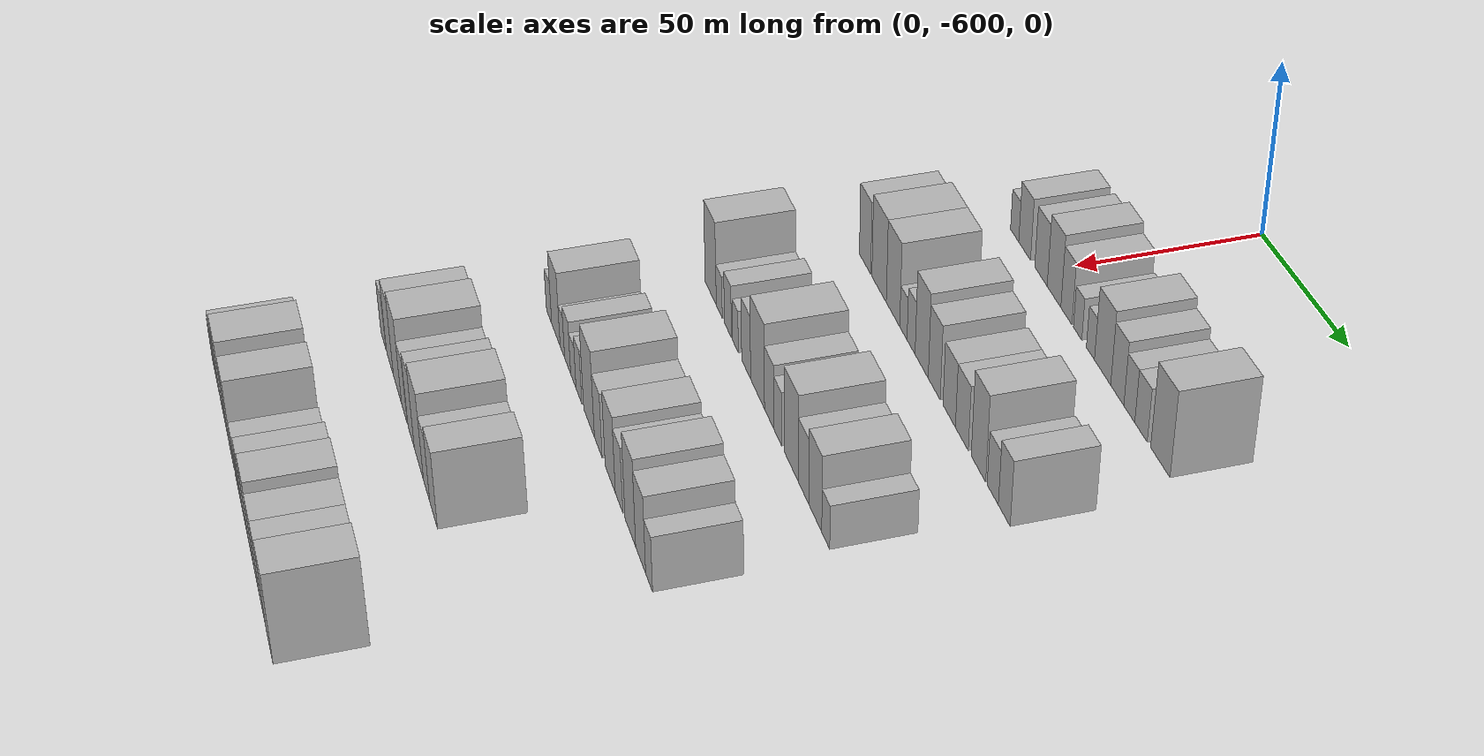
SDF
<sdf version="1.6">
 <world name="default">
  <model name="building_1">
   <static>1</static>
   <pose>50.0000 -617.0048 0 0.000000 0.000000 0.000000</pose>
   <link name="link">
    <pose>0 0 6.00 0 0 0</pose>
    <collision name="collision"><geometry><box><size>20.0000 5.9904 12.0000</size></box></geometry></collision>
    <visual name="visual">
     <cast_shadows>0</cast_shadows>
     <geometry><box><size>20.0000 5.9904 12.0000</size></box></geometry>
     <material>
      <script>
       <uri>model://HANNAS_wall/materials/scripts</uri>
       <uri>model://HANNAS_wall/materials/textures</uri>
       <name>vrc/HANNAS_wall</name>
      </script>
     </material>
    </visual>
   </link>
  </model>
  <model name="building_2">
   <static>1</static>
   <pose>50.0000 -609.7454 0 0.000000 0.000000 0.000000</pose>
   <link name="link">
    <pose>0 0 9.00 0 0 0</pose>
    <collision name="collision"><geometry><box><size>20.0000 8.5283 18.0000</size></box></geometry></collision>
    <visual name="visual">
     <cast_shadows>0</cast_shadows>
     <geometry><box><size>20.0000 8.5283 18.0000</size></box></geometry>
     <material>
      <script>
       <uri>model://HANNAS_wall/materials/scripts</uri>
       <uri>model://HANNAS_wall/materials/textures</uri>
       <name>vrc/HANNAS_wall</name>
      </script>
     </material>
    </visual>
   </link>
  </model>
  <model name="building_3">
   <static>1</static>
   <pose>50.0000 -598.1170 0 0.000000 0.000000 0.000000</pose>
   <link name="link">
    <pose>0 0 9.00 0 0 0</pose>
    <collision name="collision"><geometry><box><size>20.0000 8.7286 18.0000</size></box></geometry></collision>
    <visual name="visual">
     <cast_shadows>0</cast_shadows>
     <geometry><box><size>20.0000 8.7286 18.0000</size></box></geometry>
     <material>
      <script>
       <uri>model://HANNAS_wall/materials/scripts</uri>
       <uri>model://HANNAS_wall/materials/textures</uri>
       <name>vrc/HANNAS_wall</name>
      </script>
     </material>
    </visual>
   </link>
  </model>
  <model name="building_4">
   <static>1</static>
   <pose>50.0000 -589.0445 0 0.000000 0.000000 0.000000</pose>
   <link name="link">
    <pose>0 0 10.50 0 0 0</pose>
    <collision name="collision"><geometry><box><size>20.0000 9.4165 21.0000</size></box></geometry></collision>
    <visual name="visual">
     <cast_shadows>0</cast_shadows>
     <geometry><box><size>20.0000 9.4165 21.0000</size></box></geometry>
     <material>
      <script>
       <uri>model://HANNAS_wall/materials/scripts</uri>
       <uri>model://HANNAS_wall/materials/textures</uri>
       <name>vrc/HANNAS_wall</name>
      </script>
     </material>
    </visual>
   </link>
  </model>
  <model name="building_5">
   <static>1</static>
   <pose>50.0000 -580.6027 0 0.000000 0.000000 0.000000</pose>
   <link name="link">
    <pose>0 0 9.00 0 0 0</pose>
    <collision name="collision"><geometry><box><size>20.0000 7.4671 18.0000</size></box></geometry></collision>
    <visual name="visual">
     <cast_shadows>0</cast_shadows>
     <geometry><box><size>20.0000 7.4671 18.0000</size></box></geometry>
     <material>
      <script>
       <uri>model://HANNAS_wall/materials/scripts</uri>
       <uri>model://HANNAS_wall/materials/textures</uri>
       <name>vrc/HANNAS_wall</name>
      </script>
     </material>
    </visual>
   </link>
  </model>
  <model name="building_6">
   <static>1</static>
   <pose>50.0000 -573.0892 0 0.000000 0.000000 0.000000</pose>
   <link name="link">
    <pose>0 0 6.00 0 0 0</pose>
    <collision name="collision"><geometry><box><size>20.0000 5.5600 12.0000</size></box></geometry></collision>
    <visual name="visual">
     <cast_shadows>0</cast_shadows>
     <geometry><box><size>20.0000 5.5600 12.0000</size></box></geometry>
     <material>
      <script>
       <uri>model://HANNAS_wall/materials/scripts</uri>
       <uri>model://HANNAS_wall/materials/textures</uri>
       <name>vrc/HANNAS_wall</name>
      </script>
     </material>
    </visual>
   </link>
  </model>
  <model name="building_7">
   <static>1</static>
   <pose>50.0000 -564.6854 0 0.000000 0.000000 0.000000</pose>
   <link name="link">
    <pose>0 0 6.00 0 0 0</pose>
    <collision name="collision"><geometry><box><size>20.0000 5.2476 12.0000</size></box></geometry></collision>
    <visual name="visual">
     <cast_shadows>0</cast_shadows>
     <geometry><box><size>20.0000 5.2476 12.0000</size></box></geometry>
     <material>
      <script>
       <uri>model://HANNAS_wall/materials/scripts</uri>
       <uri>model://HANNAS_wall/materials/textures</uri>
       <name>vrc/HANNAS_wall</name>
      </script>
     </material>
    </visual>
   </link>
  </model>
  <model name="building_8">
   <static>1</static>
   <pose>50.0000 -556.8912 0 0.000000 0.000000 0.000000</pose>
   <link name="link">
    <pose>0 0 10.50 0 0 0</pose>
    <collision name="collision"><geometry><box><size>20.0000 10.3409 21.0000</size></box></geometry></collision>
    <visual name="visual">
     <cast_shadows>0</cast_shadows>
     <geometry><box><size>20.0000 10.3409 21.0000</size></box></geometry>
     <material>
      <script>
       <uri>model://HANNAS_wall/materials/scripts</uri>
       <uri>model://HANNAS_wall/materials/textures</uri>
       <name>vrc/HANNAS_wall</name>
      </script>
     </material>
    </visual>
   </link>
  </model>
  <model name="building_9">
   <static>1</static>
   <pose>50.0000 -547.6293 0 0.000000 0.000000 0.000000</pose>
   <link name="link">
    <pose>0 0 9.00 0 0 0</pose>
    <collision name="collision"><geometry><box><size>20.0000 8.1828 18.0000</size></box></geometry></collision>
    <visual name="visual">
     <cast_shadows>0</cast_shadows>
     <geometry><box><size>20.0000 8.1828 18.0000</size></box></geometry>
     <material>
      <script>
       <uri>model://HANNAS_wall/materials/scripts</uri>
       <uri>model://HANNAS_wall/materials/textures</uri>
       <name>vrc/HANNAS_wall</name>
      </script>
     </material>
    </visual>
   </link>
  </model>
  <model name="building_10">
   <static>1</static>
   <pose>50.0000 -540.1912 0 0.000000 0.000000 0.000000</pose>
   <link name="link">
    <pose>0 0 7.50 0 0 0</pose>
    <collision name="collision"><geometry><box><size>20.0000 6.6935 15.0000</size></box></geometry></collision>
    <visual name="visual">
     <cast_shadows>0</cast_shadows>
     <geometry><box><size>20.0000 6.6935 15.0000</size></box></geometry>
     <material>
      <script>
       <uri>model://HANNAS_wall/materials/scripts</uri>
       <uri>model://HANNAS_wall/materials/textures</uri>
       <name>vrc/HANNAS_wall</name>
      </script>
     </material>
    </visual>
   </link>
  </model>
  <model name="building_11">
   <static>1</static>
   <pose>50.0000 -533.0951 0 0.000000 0.000000 0.000000</pose>
   <link name="link">
    <pose>0 0 7.50 0 0 0</pose>
    <collision name="collision"><geometry><box><size>20.0000 7.4987 15.0000</size></box></geometry></collision>
    <visual name="visual">
     <cast_shadows>0</cast_shadows>
     <geometry><box><size>20.0000 7.4987 15.0000</size></box></geometry>
     <material>
      <script>
       <uri>model://HANNAS_wall/materials/scripts</uri>
       <uri>model://HANNAS_wall/materials/textures</uri>
       <name>vrc/HANNAS_wall</name>
      </script>
     </material>
    </visual>
   </link>
  </model>
  <model name="building_12">
   <static>1</static>
   <pose>50.0000 -521.6678 0 0.000000 0.000000 0.000000</pose>
   <link name="link">
    <pose>0 0 12.00 0 0 0</pose>
    <collision name="collision"><geometry><box><size>20.0000 11.3558 24.0000</size></box></geometry></collision>
    <visual name="visual">
     <cast_shadows>0</cast_shadows>
     <geometry><box><size>20.0000 11.3558 24.0000</size></box></geometry>
     <material>
      <script>
       <uri>model://HANNAS_wall/materials/scripts</uri>
       <uri>model://HANNAS_wall/materials/textures</uri>
       <name>vrc/HANNAS_wall</name>
      </script>
     </material>
    </visual>
   </link>
  </model>
  <model name="building_138">
   <static>1</static>
   <pose>90.0000 -615.3735 0 0.000000 0.000000 0.000000</pose>
   <link name="link">
    <pose>0 0 10.50 0 0 0</pose>
    <collision name="collision"><geometry><box><size>20.0000 9.2531 21.0000</size></box></geometry></collision>
    <visual name="visual">
     <cast_shadows>0</cast_shadows>
     <geometry><box><size>20.0000 9.2531 21.0000</size></box></geometry>
     <material>
      <script>
       <uri>model://HANNAS_wall/materials/scripts</uri>
       <uri>model://HANNAS_wall/materials/textures</uri>
       <name>vrc/HANNAS_wall</name>
      </script>
     </material>
    </visual>
   </link>
  </model>
  <model name="building_139">
   <static>1</static>
   <pose>90.0000 -603.9607 0 0.000000 0.000000 0.000000</pose>
   <link name="link">
    <pose>0 0 12.00 0 0 0</pose>
    <collision name="collision"><geometry><box><size>20.0000 11.5725 24.0000</size></box></geometry></collision>
    <visual name="visual">
     <cast_shadows>0</cast_shadows>
     <geometry><box><size>20.0000 11.5725 24.0000</size></box></geometry>
     <material>
      <script>
       <uri>model://HANNAS_wall/materials/scripts</uri>
       <uri>model://HANNAS_wall/materials/textures</uri>
       <name>vrc/HANNAS_wall</name>
      </script>
     </material>
    </visual>
   </link>
  </model>
  <model name="building_140">
   <static>1</static>
   <pose>90.0000 -592.9087 0 0.000000 0.000000 0.000000</pose>
   <link name="link">
    <pose>0 0 12.00 0 0 0</pose>
    <collision name="collision"><geometry><box><size>20.0000 10.5315 24.0000</size></box></geometry></collision>
    <visual name="visual">
     <cast_shadows>0</cast_shadows>
     <geometry><box><size>20.0000 10.5315 24.0000</size></box></geometry>
     <material>
      <script>
       <uri>model://HANNAS_wall/materials/scripts</uri>
       <uri>model://HANNAS_wall/materials/textures</uri>
       <name>vrc/HANNAS_wall</name>
      </script>
     </material>
    </visual>
   </link>
  </model>
  <model name="building_141">
   <static>1</static>
   <pose>90.0000 -584.8179 0 0.000000 0.000000 0.000000</pose>
   <link name="link">
    <pose>0 0 6.00 0 0 0</pose>
    <collision name="collision"><geometry><box><size>20.0000 5.6500 12.0000</size></box></geometry></collision>
    <visual name="visual">
     <cast_shadows>0</cast_shadows>
     <geometry><box><size>20.0000 5.6500 12.0000</size></box></geometry>
     <material>
      <script>
       <uri>model://HANNAS_wall/materials/scripts</uri>
       <uri>model://HANNAS_wall/materials/textures</uri>
       <name>vrc/HANNAS_wall</name>
      </script>
     </material>
    </visual>
   </link>
  </model>
  <model name="building_142">
   <static>1</static>
   <pose>90.0000 -578.9560 0 0.000000 0.000000 0.000000</pose>
   <link name="link">
    <pose>0 0 7.50 0 0 0</pose>
    <collision name="collision"><geometry><box><size>20.0000 6.0738 15.0000</size></box></geometry></collision>
    <visual name="visual">
     <cast_shadows>0</cast_shadows>
     <geometry><box><size>20.0000 6.0738 15.0000</size></box></geometry>
     <material>
      <script>
       <uri>model://HANNAS_wall/materials/scripts</uri>
       <uri>model://HANNAS_wall/materials/textures</uri>
       <name>vrc/HANNAS_wall</name>
      </script>
     </material>
    </visual>
   </link>
  </model>
  <model name="building_143">
   <static>1</static>
   <pose>90.0000 -571.0192 0 0.000000 0.000000 0.000000</pose>
   <link name="link">
    <pose>0 0 12.00 0 0 0</pose>
    <collision name="collision"><geometry><box><size>20.0000 9.7998 24.0000</size></box></geometry></collision>
    <visual name="visual">
     <cast_shadows>0</cast_shadows>
     <geometry><box><size>20.0000 9.7998 24.0000</size></box></geometry>
     <material>
      <script>
       <uri>model://HANNAS_wall/materials/scripts</uri>
       <uri>model://HANNAS_wall/materials/textures</uri>
       <name>vrc/HANNAS_wall</name>
      </script>
     </material>
    </visual>
   </link>
  </model>
  <model name="building_144">
   <static>1</static>
   <pose>90.0000 -561.7669 0 0.000000 0.000000 0.000000</pose>
   <link name="link">
    <pose>0 0 10.50 0 0 0</pose>
    <collision name="collision"><geometry><box><size>20.0000 8.7047 21.0000</size></box></geometry></collision>
    <visual name="visual">
     <cast_shadows>0</cast_shadows>
     <geometry><box><size>20.0000 8.7047 21.0000</size></box></geometry>
     <material>
      <script>
       <uri>model://HANNAS_wall/materials/scripts</uri>
       <uri>model://HANNAS_wall/materials/textures</uri>
       <name>vrc/HANNAS_wall</name>
      </script>
     </material>
    </visual>
   </link>
  </model>
  <model name="building_145">
   <static>1</static>
   <pose>90.0000 -550.9990 0 0.000000 0.000000 0.000000</pose>
   <link name="link">
    <pose>0 0 9.00 0 0 0</pose>
    <collision name="collision"><geometry><box><size>20.0000 8.8310 18.0000</size></box></geometry></collision>
    <visual name="visual">
     <cast_shadows>0</cast_shadows>
     <geometry><box><size>20.0000 8.8310 18.0000</size></box></geometry>
     <material>
      <script>
       <uri>model://HANNAS_wall/materials/scripts</uri>
       <uri>model://HANNAS_wall/materials/textures</uri>
       <name>vrc/HANNAS_wall</name>
      </script>
     </material>
    </visual>
   </link>
  </model>
  <model name="building_146">
   <static>1</static>
   <pose>90.0000 -542.1436 0 0.000000 0.000000 0.000000</pose>
   <link name="link">
    <pose>0 0 9.00 0 0 0</pose>
    <collision name="collision"><geometry><box><size>20.0000 8.8800 18.0000</size></box></geometry></collision>
    <visual name="visual">
     <cast_shadows>0</cast_shadows>
     <geometry><box><size>20.0000 8.8800 18.0000</size></box></geometry>
     <material>
      <script>
       <uri>model://HANNAS_wall/materials/scripts</uri>
       <uri>model://HANNAS_wall/materials/textures</uri>
       <name>vrc/HANNAS_wall</name>
      </script>
     </material>
    </visual>
   </link>
  </model>
  <model name="building_147">
   <static>1</static>
   <pose>90.0000 -530.8376 0 0.000000 0.000000 0.000000</pose>
   <link name="link">
    <pose>0 0 12.00 0 0 0</pose>
    <collision name="collision"><geometry><box><size>20.0000 9.7319 24.0000</size></box></geometry></collision>
    <visual name="visual">
     <cast_shadows>0</cast_shadows>
     <geometry><box><size>20.0000 9.7319 24.0000</size></box></geometry>
     <material>
      <script>
       <uri>model://HANNAS_wall/materials/scripts</uri>
       <uri>model://HANNAS_wall/materials/textures</uri>
       <name>vrc/HANNAS_wall</name>
      </script>
     </material>
    </visual>
   </link>
  </model>
  <model name="building_148">
   <static>1</static>
   <pose>90.0000 -521.3084 0 0.000000 0.000000 0.000000</pose>
   <link name="link">
    <pose>0 0 7.50 0 0 0</pose>
    <collision name="collision"><geometry><box><size>20.0000 7.3265 15.0000</size></box></geometry></collision>
    <visual name="visual">
     <cast_shadows>0</cast_shadows>
     <geometry><box><size>20.0000 7.3265 15.0000</size></box></geometry>
     <material>
      <script>
       <uri>model://HANNAS_wall/materials/scripts</uri>
       <uri>model://HANNAS_wall/materials/textures</uri>
       <name>vrc/HANNAS_wall</name>
      </script>
     </material>
    </visual>
   </link>
  </model>
  <model name="building_149">
   <static>1</static>
   <pose>90.0000 -513.8158 0 0.000000 0.000000 0.000000</pose>
   <link name="link">
    <pose>0 0 9.00 0 0 0</pose>
    <collision name="collision"><geometry><box><size>20.0000 7.6588 18.0000</size></box></geometry></collision>
    <visual name="visual">
     <cast_shadows>0</cast_shadows>
     <geometry><box><size>20.0000 7.6588 18.0000</size></box></geometry>
     <material>
      <script>
       <uri>model://HANNAS_wall/materials/scripts</uri>
       <uri>model://HANNAS_wall/materials/textures</uri>
       <name>vrc/HANNAS_wall</name>
      </script>
     </material>
    </visual>
   </link>
  </model>
  <model name="building_275">
   <static>1</static>
   <pose>130.0000 -613.7500 0 0.000000 0.000000 0.000000</pose>
   <link name="link">
    <pose>0 0 12.00 0 0 0</pose>
    <collision name="collision"><geometry><box><size>20.0000 10.5000 24.0000</size></box></geometry></collision>
    <visual name="visual">
     <cast_shadows>0</cast_shadows>
     <geometry><box><size>20.0000 10.5000 24.0000</size></box></geometry>
     <material>
      <script>
       <uri>model://HANNAS_wall/materials/scripts</uri>
       <uri>model://HANNAS_wall/materials/textures</uri>
       <name>vrc/HANNAS_wall</name>
      </script>
     </material>
    </visual>
   </link>
  </model>
  <model name="building_276">
   <static>1</static>
   <pose>130.0000 -605.6920 0 0.000000 0.000000 0.000000</pose>
   <link name="link">
    <pose>0 0 6.00 0 0 0</pose>
    <collision name="collision"><geometry><box><size>20.0000 5.6160 12.0000</size></box></geometry></collision>
    <visual name="visual">
     <cast_shadows>0</cast_shadows>
     <geometry><box><size>20.0000 5.6160 12.0000</size></box></geometry>
     <material>
      <script>
       <uri>model://HANNAS_wall/materials/scripts</uri>
       <uri>model://HANNAS_wall/materials/textures</uri>
       <name>vrc/HANNAS_wall</name>
      </script>
     </material>
    </visual>
   </link>
  </model>
  <model name="building_277">
   <static>1</static>
   <pose>130.0000 -597.6679 0 0.000000 0.000000 0.000000</pose>
   <link name="link">
    <pose>0 0 7.50 0 0 0</pose>
    <collision name="collision"><geometry><box><size>20.0000 6.4321 15.0000</size></box></geometry></collision>
    <visual name="visual">
     <cast_shadows>0</cast_shadows>
     <geometry><box><size>20.0000 6.4321 15.0000</size></box></geometry>
     <material>
      <script>
       <uri>model://HANNAS_wall/materials/scripts</uri>
       <uri>model://HANNAS_wall/materials/textures</uri>
       <name>vrc/HANNAS_wall</name>
      </script>
     </material>
    </visual>
   </link>
  </model>
  <model name="building_278">
   <static>1</static>
   <pose>130.0000 -590.8436 0 0.000000 0.000000 0.000000</pose>
   <link name="link">
    <pose>0 0 6.00 0 0 0</pose>
    <collision name="collision"><geometry><box><size>20.0000 5.2165 12.0000</size></box></geometry></collision>
    <visual name="visual">
     <cast_shadows>0</cast_shadows>
     <geometry><box><size>20.0000 5.2165 12.0000</size></box></geometry>
     <material>
      <script>
       <uri>model://HANNAS_wall/materials/scripts</uri>
       <uri>model://HANNAS_wall/materials/textures</uri>
       <name>vrc/HANNAS_wall</name>
      </script>
     </material>
    </visual>
   </link>
  </model>
  <model name="building_279">
   <static>1</static>
   <pose>130.0000 -581.2749 0 0.000000 0.000000 0.000000</pose>
   <link name="link">
    <pose>0 0 9.00 0 0 0</pose>
    <collision name="collision"><geometry><box><size>20.0000 7.9208 18.0000</size></box></geometry></collision>
    <visual name="visual">
     <cast_shadows>0</cast_shadows>
     <geometry><box><size>20.0000 7.9208 18.0000</size></box></geometry>
     <material>
      <script>
       <uri>model://HANNAS_wall/materials/scripts</uri>
       <uri>model://HANNAS_wall/materials/textures</uri>
       <name>vrc/HANNAS_wall</name>
      </script>
     </material>
    </visual>
   </link>
  </model>
  <model name="building_280">
   <static>1</static>
   <pose>130.0000 -571.3320 0 0.000000 0.000000 0.000000</pose>
   <link name="link">
    <pose>0 0 12.00 0 0 0</pose>
    <collision name="collision"><geometry><box><size>20.0000 11.9650 24.0000</size></box></geometry></collision>
    <visual name="visual">
     <cast_shadows>0</cast_shadows>
     <geometry><box><size>20.0000 11.9650 24.0000</size></box></geometry>
     <material>
      <script>
       <uri>model://HANNAS_wall/materials/scripts</uri>
       <uri>model://HANNAS_wall/materials/textures</uri>
       <name>vrc/HANNAS_wall</name>
      </script>
     </material>
    </visual>
   </link>
  </model>
  <model name="building_281">
   <static>1</static>
   <pose>130.0000 -561.4346 0 0.000000 0.000000 0.000000</pose>
   <link name="link">
    <pose>0 0 9.00 0 0 0</pose>
    <collision name="collision"><geometry><box><size>20.0000 7.8299 18.0000</size></box></geometry></collision>
    <visual name="visual">
     <cast_shadows>0</cast_shadows>
     <geometry><box><size>20.0000 7.8299 18.0000</size></box></geometry>
     <material>
      <script>
       <uri>model://HANNAS_wall/materials/scripts</uri>
       <uri>model://HANNAS_wall/materials/textures</uri>
       <name>vrc/HANNAS_wall</name>
      </script>
     </material>
    </visual>
   </link>
  </model>
  <model name="building_282">
   <static>1</static>
   <pose>130.0000 -554.2824 0 0.000000 0.000000 0.000000</pose>
   <link name="link">
    <pose>0 0 7.50 0 0 0</pose>
    <collision name="collision"><geometry><box><size>20.0000 6.4746 15.0000</size></box></geometry></collision>
    <visual name="visual">
     <cast_shadows>0</cast_shadows>
     <geometry><box><size>20.0000 6.4746 15.0000</size></box></geometry>
     <material>
      <script>
       <uri>model://HANNAS_wall/materials/scripts</uri>
       <uri>model://HANNAS_wall/materials/textures</uri>
       <name>vrc/HANNAS_wall</name>
      </script>
     </material>
    </visual>
   </link>
  </model>
  <model name="building_283">
   <static>1</static>
   <pose>130.0000 -543.3528 0 0.000000 0.000000 0.000000</pose>
   <link name="link">
    <pose>0 0 12.00 0 0 0</pose>
    <collision name="collision"><geometry><box><size>20.0000 11.3846 24.0000</size></box></geometry></collision>
    <visual name="visual">
     <cast_shadows>0</cast_shadows>
     <geometry><box><size>20.0000 11.3846 24.0000</size></box></geometry>
     <material>
      <script>
       <uri>model://HANNAS_wall/materials/scripts</uri>
       <uri>model://HANNAS_wall/materials/textures</uri>
       <name>vrc/HANNAS_wall</name>
      </script>
     </material>
    </visual>
   </link>
  </model>
  <model name="building_284">
   <static>1</static>
   <pose>130.0000 -533.5246 0 0.000000 0.000000 0.000000</pose>
   <link name="link">
    <pose>0 0 9.00 0 0 0</pose>
    <collision name="collision"><geometry><box><size>20.0000 8.2717 18.0000</size></box></geometry></collision>
    <visual name="visual">
     <cast_shadows>0</cast_shadows>
     <geometry><box><size>20.0000 8.2717 18.0000</size></box></geometry>
     <material>
      <script>
       <uri>model://HANNAS_wall/materials/scripts</uri>
       <uri>model://HANNAS_wall/materials/textures</uri>
       <name>vrc/HANNAS_wall</name>
      </script>
     </material>
    </visual>
   </link>
  </model>
  <model name="building_285">
   <static>1</static>
   <pose>130.0000 -524.4626 0 0.000000 0.000000 0.000000</pose>
   <link name="link">
    <pose>0 0 10.50 0 0 0</pose>
    <collision name="collision"><geometry><box><size>20.0000 9.8523 21.0000</size></box></geometry></collision>
    <visual name="visual">
     <cast_shadows>0</cast_shadows>
     <geometry><box><size>20.0000 9.8523 21.0000</size></box></geometry>
     <material>
      <script>
       <uri>model://HANNAS_wall/materials/scripts</uri>
       <uri>model://HANNAS_wall/materials/textures</uri>
       <name>vrc/HANNAS_wall</name>
      </script>
     </material>
    </visual>
   </link>
  </model>
  <model name="building_286">
   <static>1</static>
   <pose>130.0000 -516.5455 0 0.000000 0.000000 0.000000</pose>
   <link name="link">
    <pose>0 0 6.00 0 0 0</pose>
    <collision name="collision"><geometry><box><size>20.0000 5.9820 12.0000</size></box></geometry></collision>
    <visual name="visual">
     <cast_shadows>0</cast_shadows>
     <geometry><box><size>20.0000 5.9820 12.0000</size></box></geometry>
     <material>
      <script>
       <uri>model://HANNAS_wall/materials/scripts</uri>
       <uri>model://HANNAS_wall/materials/textures</uri>
       <name>vrc/HANNAS_wall</name>
      </script>
     </material>
    </visual>
   </link>
  </model>
  <model name="building_414">
   <static>1</static>
   <pose>170.0000 -615.0019 0 0.000000 0.000000 0.000000</pose>
   <link name="link">
    <pose>0 0 6.00 0 0 0</pose>
    <collision name="collision"><geometry><box><size>20.0000 5.9961 12.0000</size></box></geometry></collision>
    <visual name="visual">
     <cast_shadows>0</cast_shadows>
     <geometry><box><size>20.0000 5.9961 12.0000</size></box></geometry>
     <material>
      <script>
       <uri>model://HANNAS_wall/materials/scripts</uri>
       <uri>model://HANNAS_wall/materials/textures</uri>
       <name>vrc/HANNAS_wall</name>
      </script>
     </material>
    </visual>
   </link>
  </model>
  <model name="building_415">
   <static>1</static>
   <pose>170.0000 -607.2306 0 0.000000 0.000000 0.000000</pose>
   <link name="link">
    <pose>0 0 10.50 0 0 0</pose>
    <collision name="collision"><geometry><box><size>20.0000 9.5466 21.0000</size></box></geometry></collision>
    <visual name="visual">
     <cast_shadows>0</cast_shadows>
     <geometry><box><size>20.0000 9.5466 21.0000</size></box></geometry>
     <material>
      <script>
       <uri>model://HANNAS_wall/materials/scripts</uri>
       <uri>model://HANNAS_wall/materials/textures</uri>
       <name>vrc/HANNAS_wall</name>
      </script>
     </material>
    </visual>
   </link>
  </model>
  <model name="building_416">
   <static>1</static>
   <pose>170.0000 -599.9530 0 0.000000 0.000000 0.000000</pose>
   <link name="link">
    <pose>0 0 6.00 0 0 0</pose>
    <collision name="collision"><geometry><box><size>20.0000 5.0086 12.0000</size></box></geometry></collision>
    <visual name="visual">
     <cast_shadows>0</cast_shadows>
     <geometry><box><size>20.0000 5.0086 12.0000</size></box></geometry>
     <material>
      <script>
       <uri>model://HANNAS_wall/materials/scripts</uri>
       <uri>model://HANNAS_wall/materials/textures</uri>
       <name>vrc/HANNAS_wall</name>
      </script>
     </material>
    </visual>
   </link>
  </model>
  <model name="building_417">
   <static>1</static>
   <pose>170.0000 -594.1513 0 0.000000 0.000000 0.000000</pose>
   <link name="link">
    <pose>0 0 7.50 0 0 0</pose>
    <collision name="collision"><geometry><box><size>20.0000 6.5947 15.0000</size></box></geometry></collision>
    <visual name="visual">
     <cast_shadows>0</cast_shadows>
     <geometry><box><size>20.0000 6.5947 15.0000</size></box></geometry>
     <material>
      <script>
       <uri>model://HANNAS_wall/materials/scripts</uri>
       <uri>model://HANNAS_wall/materials/textures</uri>
       <name>vrc/HANNAS_wall</name>
      </script>
     </material>
    </visual>
   </link>
  </model>
  <model name="building_418">
   <static>1</static>
   <pose>170.0000 -587.9702 0 0.000000 0.000000 0.000000</pose>
   <link name="link">
    <pose>0 0 6.00 0 0 0</pose>
    <collision name="collision"><geometry><box><size>20.0000 5.7676 12.0000</size></box></geometry></collision>
    <visual name="visual">
     <cast_shadows>0</cast_shadows>
     <geometry><box><size>20.0000 5.7676 12.0000</size></box></geometry>
     <material>
      <script>
       <uri>model://HANNAS_wall/materials/scripts</uri>
       <uri>model://HANNAS_wall/materials/textures</uri>
       <name>vrc/HANNAS_wall</name>
      </script>
     </material>
    </visual>
   </link>
  </model>
  <model name="building_419">
   <static>1</static>
   <pose>170.0000 -582.0630 0 0.000000 0.000000 0.000000</pose>
   <link name="link">
    <pose>0 0 7.50 0 0 0</pose>
    <collision name="collision"><geometry><box><size>20.0000 6.0468 15.0000</size></box></geometry></collision>
    <visual name="visual">
     <cast_shadows>0</cast_shadows>
     <geometry><box><size>20.0000 6.0468 15.0000</size></box></geometry>
     <material>
      <script>
       <uri>model://HANNAS_wall/materials/scripts</uri>
       <uri>model://HANNAS_wall/materials/textures</uri>
       <name>vrc/HANNAS_wall</name>
      </script>
     </material>
    </visual>
   </link>
  </model>
  <model name="building_420">
   <static>1</static>
   <pose>170.0000 -571.4771 0 0.000000 0.000000 0.000000</pose>
   <link name="link">
    <pose>0 0 12.00 0 0 0</pose>
    <collision name="collision"><geometry><box><size>20.0000 11.1250 24.0000</size></box></geometry></collision>
    <visual name="visual">
     <cast_shadows>0</cast_shadows>
     <geometry><box><size>20.0000 11.1250 24.0000</size></box></geometry>
     <material>
      <script>
       <uri>model://HANNAS_wall/materials/scripts</uri>
       <uri>model://HANNAS_wall/materials/textures</uri>
       <name>vrc/HANNAS_wall</name>
      </script>
     </material>
    </visual>
   </link>
  </model>
  <model name="building_421">
   <static>1</static>
   <pose>170.0000 -561.9944 0 0.000000 0.000000 0.000000</pose>
   <link name="link">
    <pose>0 0 9.00 0 0 0</pose>
    <collision name="collision"><geometry><box><size>20.0000 7.8403 18.0000</size></box></geometry></collision>
    <visual name="visual">
     <cast_shadows>0</cast_shadows>
     <geometry><box><size>20.0000 7.8403 18.0000</size></box></geometry>
     <material>
      <script>
       <uri>model://HANNAS_wall/materials/scripts</uri>
       <uri>model://HANNAS_wall/materials/textures</uri>
       <name>vrc/HANNAS_wall</name>
      </script>
     </material>
    </visual>
   </link>
  </model>
  <model name="building_422">
   <static>1</static>
   <pose>170.0000 -550.0972 0 0.000000 0.000000 0.000000</pose>
   <link name="link">
    <pose>0 0 10.50 0 0 0</pose>
    <collision name="collision"><geometry><box><size>20.0000 9.9543 21.0000</size></box></geometry></collision>
    <visual name="visual">
     <cast_shadows>0</cast_shadows>
     <geometry><box><size>20.0000 9.9543 21.0000</size></box></geometry>
     <material>
      <script>
       <uri>model://HANNAS_wall/materials/scripts</uri>
       <uri>model://HANNAS_wall/materials/textures</uri>
       <name>vrc/HANNAS_wall</name>
      </script>
     </material>
    </visual>
   </link>
  </model>
  <model name="building_423">
   <static>1</static>
   <pose>170.0000 -541.5027 0 0.000000 0.000000 0.000000</pose>
   <link name="link">
    <pose>0 0 9.00 0 0 0</pose>
    <collision name="collision"><geometry><box><size>20.0000 7.2347 18.0000</size></box></geometry></collision>
    <visual name="visual">
     <cast_shadows>0</cast_shadows>
     <geometry><box><size>20.0000 7.2347 18.0000</size></box></geometry>
     <material>
      <script>
       <uri>model://HANNAS_wall/materials/scripts</uri>
       <uri>model://HANNAS_wall/materials/textures</uri>
       <name>vrc/HANNAS_wall</name>
      </script>
     </material>
    </visual>
   </link>
  </model>
  <model name="building_424">
   <static>1</static>
   <pose>170.0000 -530.9131 0 0.000000 0.000000 0.000000</pose>
   <link name="link">
    <pose>0 0 12.00 0 0 0</pose>
    <collision name="collision"><geometry><box><size>20.0000 9.9445 24.0000</size></box></geometry></collision>
    <visual name="visual">
     <cast_shadows>0</cast_shadows>
     <geometry><box><size>20.0000 9.9445 24.0000</size></box></geometry>
     <material>
      <script>
       <uri>model://HANNAS_wall/materials/scripts</uri>
       <uri>model://HANNAS_wall/materials/textures</uri>
       <name>vrc/HANNAS_wall</name>
      </script>
     </material>
    </visual>
   </link>
  </model>
  <model name="building_425">
   <static>1</static>
   <pose>170.0000 -521.4082 0 0.000000 0.000000 0.000000</pose>
   <link name="link">
    <pose>0 0 10.50 0 0 0</pose>
    <collision name="collision"><geometry><box><size>20.0000 9.0653 21.0000</size></box></geometry></collision>
    <visual name="visual">
     <cast_shadows>0</cast_shadows>
     <geometry><box><size>20.0000 9.0653 21.0000</size></box></geometry>
     <material>
      <script>
       <uri>model://HANNAS_wall/materials/scripts</uri>
       <uri>model://HANNAS_wall/materials/textures</uri>
       <name>vrc/HANNAS_wall</name>
      </script>
     </material>
    </visual>
   </link>
  </model>
  <model name="building_426">
   <static>1</static>
   <pose>170.0000 -513.7836 0 0.000000 0.000000 0.000000</pose>
   <link name="link">
    <pose>0 0 7.50 0 0 0</pose>
    <collision name="collision"><geometry><box><size>20.0000 6.1839 15.0000</size></box></geometry></collision>
    <visual name="visual">
     <cast_shadows>0</cast_shadows>
     <geometry><box><size>20.0000 6.1839 15.0000</size></box></geometry>
     <material>
      <script>
       <uri>model://HANNAS_wall/materials/scripts</uri>
       <uri>model://HANNAS_wall/materials/textures</uri>
       <name>vrc/HANNAS_wall</name>
      </script>
     </material>
    </visual>
   </link>
  </model>
  <model name="building_551">
   <static>1</static>
   <pose>210.0000 -616.2902 0 0.000000 0.000000 0.000000</pose>
   <link name="link">
    <pose>0 0 7.50 0 0 0</pose>
    <collision name="collision"><geometry><box><size>20.0000 7.4195 15.0000</size></box></geometry></collision>
    <visual name="visual">
     <cast_shadows>0</cast_shadows>
     <geometry><box><size>20.0000 7.4195 15.0000</size></box></geometry>
     <material>
      <script>
       <uri>model://HANNAS_wall/materials/scripts</uri>
       <uri>model://HANNAS_wall/materials/textures</uri>
       <name>vrc/HANNAS_wall</name>
      </script>
     </material>
    </visual>
   </link>
  </model>
  <model name="building_552">
   <static>1</static>
   <pose>210.0000 -606.6911 0 0.000000 0.000000 0.000000</pose>
   <link name="link">
    <pose>0 0 10.50 0 0 0</pose>
    <collision name="collision"><geometry><box><size>20.0000 9.7787 21.0000</size></box></geometry></collision>
    <visual name="visual">
     <cast_shadows>0</cast_shadows>
     <geometry><box><size>20.0000 9.7787 21.0000</size></box></geometry>
     <material>
      <script>
       <uri>model://HANNAS_wall/materials/scripts</uri>
       <uri>model://HANNAS_wall/materials/textures</uri>
       <name>vrc/HANNAS_wall</name>
      </script>
     </material>
    </visual>
   </link>
  </model>
  <model name="building_553">
   <static>1</static>
   <pose>210.0000 -596.0632 0 0.000000 0.000000 0.000000</pose>
   <link name="link">
    <pose>0 0 12.00 0 0 0</pose>
    <collision name="collision"><geometry><box><size>20.0000 11.4773 24.0000</size></box></geometry></collision>
    <visual name="visual">
     <cast_shadows>0</cast_shadows>
     <geometry><box><size>20.0000 11.4773 24.0000</size></box></geometry>
     <material>
      <script>
       <uri>model://HANNAS_wall/materials/scripts</uri>
       <uri>model://HANNAS_wall/materials/textures</uri>
       <name>vrc/HANNAS_wall</name>
      </script>
     </material>
    </visual>
   </link>
  </model>
  <model name="building_554">
   <static>1</static>
   <pose>210.0000 -586.4938 0 0.000000 0.000000 0.000000</pose>
   <link name="link">
    <pose>0 0 9.00 0 0 0</pose>
    <collision name="collision"><geometry><box><size>20.0000 7.6615 18.0000</size></box></geometry></collision>
    <visual name="visual">
     <cast_shadows>0</cast_shadows>
     <geometry><box><size>20.0000 7.6615 18.0000</size></box></geometry>
     <material>
      <script>
       <uri>model://HANNAS_wall/materials/scripts</uri>
       <uri>model://HANNAS_wall/materials/textures</uri>
       <name>vrc/HANNAS_wall</name>
      </script>
     </material>
    </visual>
   </link>
  </model>
  <model name="building_555">
   <static>1</static>
   <pose>210.0000 -577.4629 0 0.000000 0.000000 0.000000</pose>
   <link name="link">
    <pose>0 0 10.50 0 0 0</pose>
    <collision name="collision"><geometry><box><size>20.0000 8.4003 21.0000</size></box></geometry></collision>
    <visual name="visual">
     <cast_shadows>0</cast_shadows>
     <geometry><box><size>20.0000 8.4003 21.0000</size></box></geometry>
     <material>
      <script>
       <uri>model://HANNAS_wall/materials/scripts</uri>
       <uri>model://HANNAS_wall/materials/textures</uri>
       <name>vrc/HANNAS_wall</name>
      </script>
     </material>
    </visual>
   </link>
  </model>
  <model name="building_556">
   <static>1</static>
   <pose>210.0000 -567.2844 0 0.000000 0.000000 0.000000</pose>
   <link name="link">
    <pose>0 0 12.00 0 0 0</pose>
    <collision name="collision"><geometry><box><size>20.0000 11.9567 24.0000</size></box></geometry></collision>
    <visual name="visual">
     <cast_shadows>0</cast_shadows>
     <geometry><box><size>20.0000 11.9567 24.0000</size></box></geometry>
     <material>
      <script>
       <uri>model://HANNAS_wall/materials/scripts</uri>
       <uri>model://HANNAS_wall/materials/textures</uri>
       <name>vrc/HANNAS_wall</name>
      </script>
     </material>
    </visual>
   </link>
  </model>
  <model name="building_557">
   <static>1</static>
   <pose>210.0000 -557.2876 0 0.000000 0.000000 0.000000</pose>
   <link name="link">
    <pose>0 0 9.00 0 0 0</pose>
    <collision name="collision"><geometry><box><size>20.0000 8.0369 18.0000</size></box></geometry></collision>
    <visual name="visual">
     <cast_shadows>0</cast_shadows>
     <geometry><box><size>20.0000 8.0369 18.0000</size></box></geometry>
     <material>
      <script>
       <uri>model://HANNAS_wall/materials/scripts</uri>
       <uri>model://HANNAS_wall/materials/textures</uri>
       <name>vrc/HANNAS_wall</name>
      </script>
     </material>
    </visual>
   </link>
  </model>
  <model name="building_558">
   <static>1</static>
   <pose>210.0000 -548.5420 0 0.000000 0.000000 0.000000</pose>
   <link name="link">
    <pose>0 0 10.50 0 0 0</pose>
    <collision name="collision"><geometry><box><size>20.0000 9.4544 21.0000</size></box></geometry></collision>
    <visual name="visual">
     <cast_shadows>0</cast_shadows>
     <geometry><box><size>20.0000 9.4544 21.0000</size></box></geometry>
     <material>
      <script>
       <uri>model://HANNAS_wall/materials/scripts</uri>
       <uri>model://HANNAS_wall/materials/textures</uri>
       <name>vrc/HANNAS_wall</name>
      </script>
     </material>
    </visual>
   </link>
  </model>
  <model name="building_688">
   <static>1</static>
   <pose>250.0000 -617.2517 0 0.000000 0.000000 0.000000</pose>
   <link name="link">
    <pose>0 0 6.00 0 0 0</pose>
    <collision name="collision"><geometry><box><size>20.0000 5.4965 12.0000</size></box></geometry></collision>
    <visual name="visual">
     <cast_shadows>0</cast_shadows>
     <geometry><box><size>20.0000 5.4965 12.0000</size></box></geometry>
     <material>
      <script>
       <uri>model://HANNAS_wall/materials/scripts</uri>
       <uri>model://HANNAS_wall/materials/textures</uri>
       <name>vrc/HANNAS_wall</name>
      </script>
     </material>
    </visual>
   </link>
  </model>
  <model name="building_689">
   <static>1</static>
   <pose>250.0000 -610.3714 0 0.000000 0.000000 0.000000</pose>
   <link name="link">
    <pose>0 0 9.00 0 0 0</pose>
    <collision name="collision"><geometry><box><size>20.0000 8.2642 18.0000</size></box></geometry></collision>
    <visual name="visual">
     <cast_shadows>0</cast_shadows>
     <geometry><box><size>20.0000 8.2642 18.0000</size></box></geometry>
     <material>
      <script>
       <uri>model://HANNAS_wall/materials/scripts</uri>
       <uri>model://HANNAS_wall/materials/textures</uri>
       <name>vrc/HANNAS_wall</name>
      </script>
     </material>
    </visual>
   </link>
  </model>
  <model name="building_690">
   <static>1</static>
   <pose>250.0000 -598.5118 0 0.000000 0.000000 0.000000</pose>
   <link name="link">
    <pose>0 0 12.00 0 0 0</pose>
    <collision name="collision"><geometry><box><size>20.0000 11.4550 24.0000</size></box></geometry></collision>
    <visual name="visual">
     <cast_shadows>0</cast_shadows>
     <geometry><box><size>20.0000 11.4550 24.0000</size></box></geometry>
     <material>
      <script>
       <uri>model://HANNAS_wall/materials/scripts</uri>
       <uri>model://HANNAS_wall/materials/textures</uri>
       <name>vrc/HANNAS_wall</name>
      </script>
     </material>
    </visual>
   </link>
  </model>
  <model name="building_691">
   <static>1</static>
   <pose>250.0000 -590.1013 0 0.000000 0.000000 0.000000</pose>
   <link name="link">
    <pose>0 0 6.00 0 0 0</pose>
    <collision name="collision"><geometry><box><size>20.0000 5.3660 12.0000</size></box></geometry></collision>
    <visual name="visual">
     <cast_shadows>0</cast_shadows>
     <geometry><box><size>20.0000 5.3660 12.0000</size></box></geometry>
     <material>
      <script>
       <uri>model://HANNAS_wall/materials/scripts</uri>
       <uri>model://HANNAS_wall/materials/textures</uri>
       <name>vrc/HANNAS_wall</name>
      </script>
     </material>
    </visual>
   </link>
  </model>
  <model name="building_692">
   <static>1</static>
   <pose>250.0000 -582.5383 0 0.000000 0.000000 0.000000</pose>
   <link name="link">
    <pose>0 0 12.00 0 0 0</pose>
    <collision name="collision"><geometry><box><size>20.0000 9.7600 24.0000</size></box></geometry></collision>
    <visual name="visual">
     <cast_shadows>0</cast_shadows>
     <geometry><box><size>20.0000 9.7600 24.0000</size></box></geometry>
     <material>
      <script>
       <uri>model://HANNAS_wall/materials/scripts</uri>
       <uri>model://HANNAS_wall/materials/textures</uri>
       <name>vrc/HANNAS_wall</name>
      </script>
     </material>
    </visual>
   </link>
  </model>
  <model name="building_693">
   <static>1</static>
   <pose>250.0000 -571.1043 0 0.000000 0.000000 0.000000</pose>
   <link name="link">
    <pose>0 0 7.50 0 0 0</pose>
    <collision name="collision"><geometry><box><size>20.0000 7.1080 15.0000</size></box></geometry></collision>
    <visual name="visual">
     <cast_shadows>0</cast_shadows>
     <geometry><box><size>20.0000 7.1080 15.0000</size></box></geometry>
     <material>
      <script>
       <uri>model://HANNAS_wall/materials/scripts</uri>
       <uri>model://HANNAS_wall/materials/textures</uri>
       <name>vrc/HANNAS_wall</name>
      </script>
     </material>
    </visual>
   </link>
  </model>
  <model name="building_694">
   <static>1</static>
   <pose>250.0000 -564.2889 0 0.000000 0.000000 0.000000</pose>
   <link name="link">
    <pose>0 0 7.50 0 0 0</pose>
    <collision name="collision"><geometry><box><size>20.0000 6.5227 15.0000</size></box></geometry></collision>
    <visual name="visual">
     <cast_shadows>0</cast_shadows>
     <geometry><box><size>20.0000 6.5227 15.0000</size></box></geometry>
     <material>
      <script>
       <uri>model://HANNAS_wall/materials/scripts</uri>
       <uri>model://HANNAS_wall/materials/textures</uri>
       <name>vrc/HANNAS_wall</name>
      </script>
     </material>
    </visual>
   </link>
  </model>
  <model name="building_695">
   <static>1</static>
   <pose>250.0000 -556.1472 0 0.000000 0.000000 0.000000</pose>
   <link name="link">
    <pose>0 0 10.50 0 0 0</pose>
    <collision name="collision"><geometry><box><size>20.0000 9.7608 21.0000</size></box></geometry></collision>
    <visual name="visual">
     <cast_shadows>0</cast_shadows>
     <geometry><box><size>20.0000 9.7608 21.0000</size></box></geometry>
     <material>
      <script>
       <uri>model://HANNAS_wall/materials/scripts</uri>
       <uri>model://HANNAS_wall/materials/textures</uri>
       <name>vrc/HANNAS_wall</name>
      </script>
     </material>
    </visual>
   </link>
  </model>
  <model name="building_696">
   <static>1</static>
   <pose>250.0000 -546.1648 0 0.000000 0.000000 0.000000</pose>
   <link name="link">
    <pose>0 0 12.00 0 0 0</pose>
    <collision name="collision"><geometry><box><size>20.0000 10.2040 24.0000</size></box></geometry></collision>
    <visual name="visual">
     <cast_shadows>0</cast_shadows>
     <geometry><box><size>20.0000 10.2040 24.0000</size></box></geometry>
     <material>
      <script>
       <uri>model://HANNAS_wall/materials/scripts</uri>
       <uri>model://HANNAS_wall/materials/textures</uri>
       <name>vrc/HANNAS_wall</name>
      </script>
     </material>
    </visual>
   </link>
  </model>
  <model name="building_697">
   <static>1</static>
   <pose>250.0000 -536.4506 0 0.000000 0.000000 0.000000</pose>
   <link name="link">
    <pose>0 0 10.50 0 0 0</pose>
    <collision name="collision"><geometry><box><size>20.0000 9.2244 21.0000</size></box></geometry></collision>
    <visual name="visual">
     <cast_shadows>0</cast_shadows>
     <geometry><box><size>20.0000 9.2244 21.0000</size></box></geometry>
     <material>
      <script>
       <uri>model://HANNAS_wall/materials/scripts</uri>
       <uri>model://HANNAS_wall/materials/textures</uri>
       <name>vrc/HANNAS_wall</name>
      </script>
     </material>
    </visual>
   </link>
  </model>
  <model name="building_698">
   <static>1</static>
   <pose>250.0000 -526.8628 0 0.000000 0.000000 0.000000</pose>
   <link name="link">
    <pose>0 0 10.50 0 0 0</pose>
    <collision name="collision"><geometry><box><size>20.0000 9.9512 21.0000</size></box></geometry></collision>
    <visual name="visual">
     <cast_shadows>0</cast_shadows>
     <geometry><box><size>20.0000 9.9512 21.0000</size></box></geometry>
     <material>
      <script>
       <uri>model://HANNAS_wall/materials/scripts</uri>
       <uri>model://HANNAS_wall/materials/textures</uri>
       <name>vrc/HANNAS_wall</name>
      </script>
     </material>
    </visual>
   </link>
  </model>
  <model name="building_699">
   <static>1</static>
   <pose>250.0000 -516.2596 0 0.000000 0.000000 0.000000</pose>
   <link name="link">
    <pose>0 0 12.00 0 0 0</pose>
    <collision name="collision"><geometry><box><size>20.0000 11.2553 24.0000</size></box></geometry></collision>
    <visual name="visual">
     <cast_shadows>0</cast_shadows>
     <geometry><box><size>20.0000 11.2553 24.0000</size></box></geometry>
     <material>
      <script>
       <uri>model://HANNAS_wall/materials/scripts</uri>
       <uri>model://HANNAS_wall/materials/textures</uri>
       <name>vrc/HANNAS_wall</name>
      </script>
     </material>
    </visual>
   </link>
  </model>
 </world>
</sdf>
